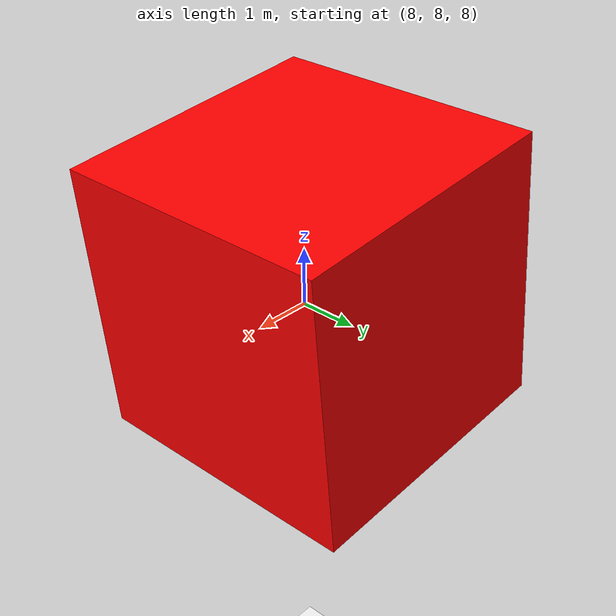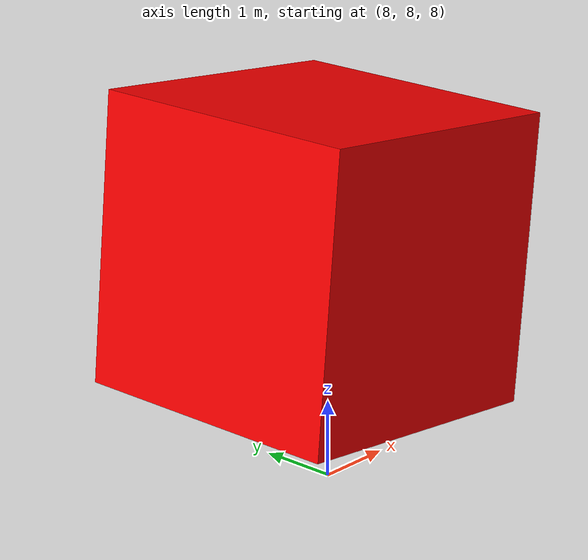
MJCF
<mujoco>
    <worldbody>
        <light name="top" pos="0 0 1"/>
        <geom type="plane" pos="0 0 0" size="10 10 10" rgba="1 1 1 1"/>
        <camera name="pizza" pos="1 -10 10" xyaxes="1 0 0 0 1 2"/>
        <body name="object_body" euler="0 0 0" pos="10 10 10">
            <joint name="joint1" type="free"/>
            <geom name="object_geom" type="box" xyaxes="0 -1 0 .1 0 1" size="2 2 2" rgba="1 0 0 1"/>
        </body>
    </worldbody>
    </mujoco>
